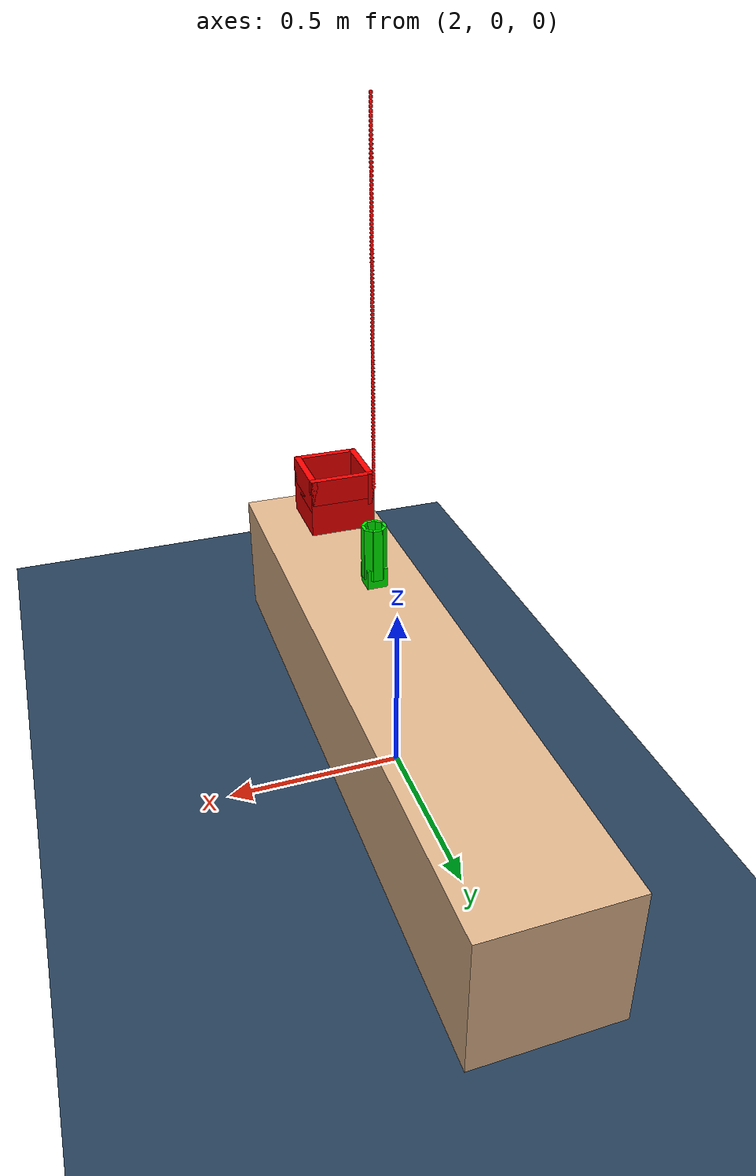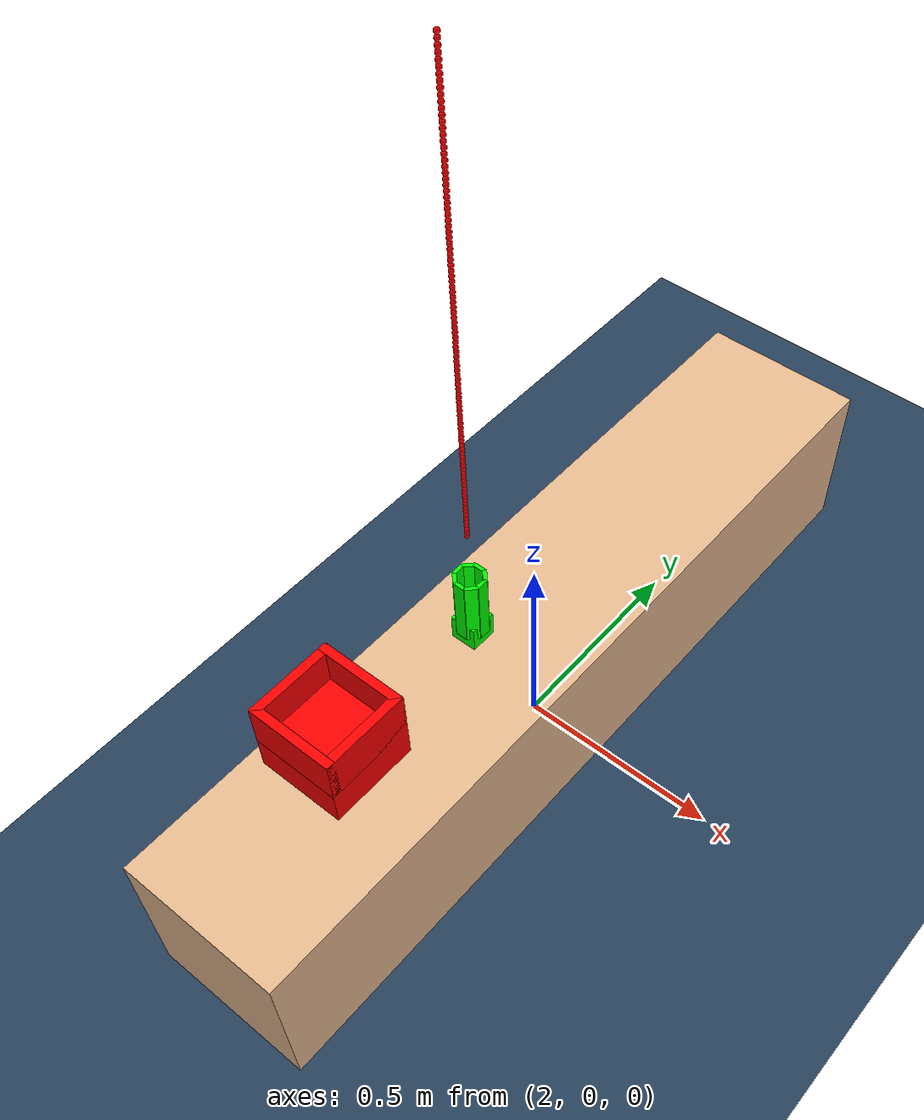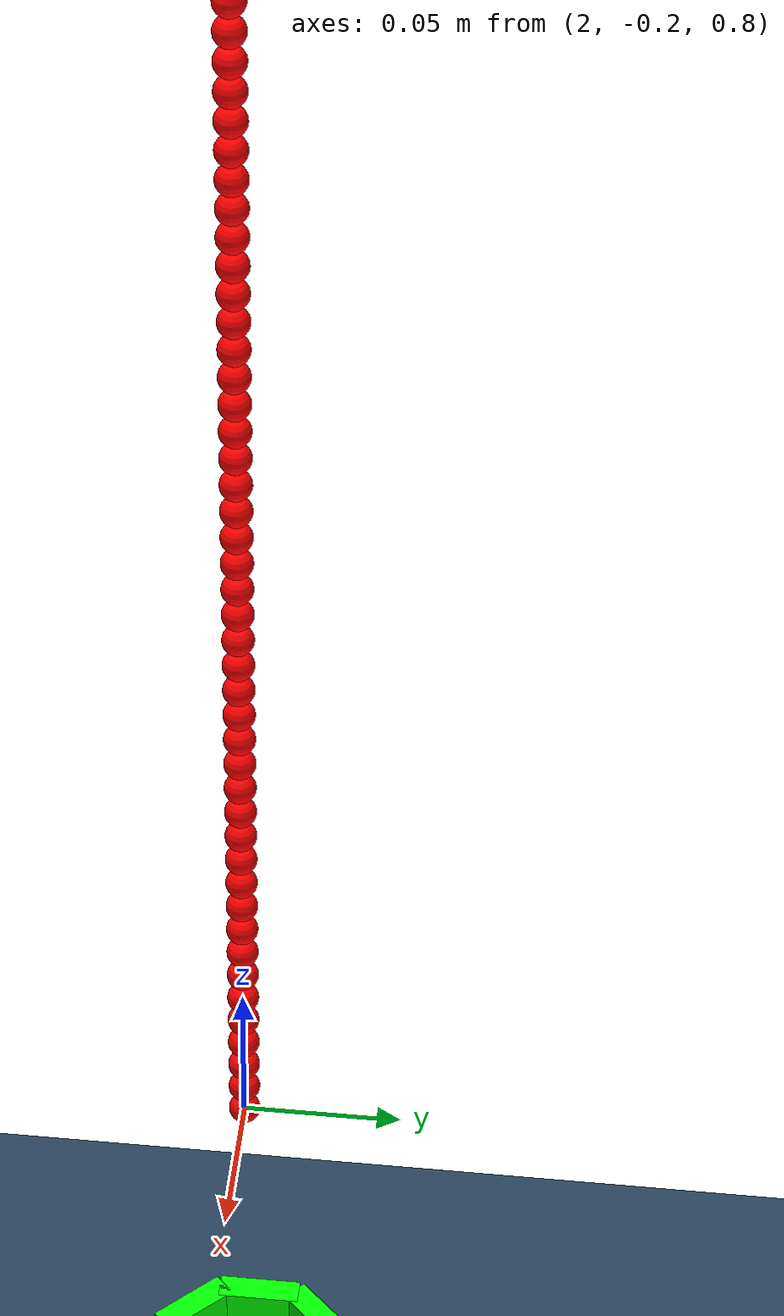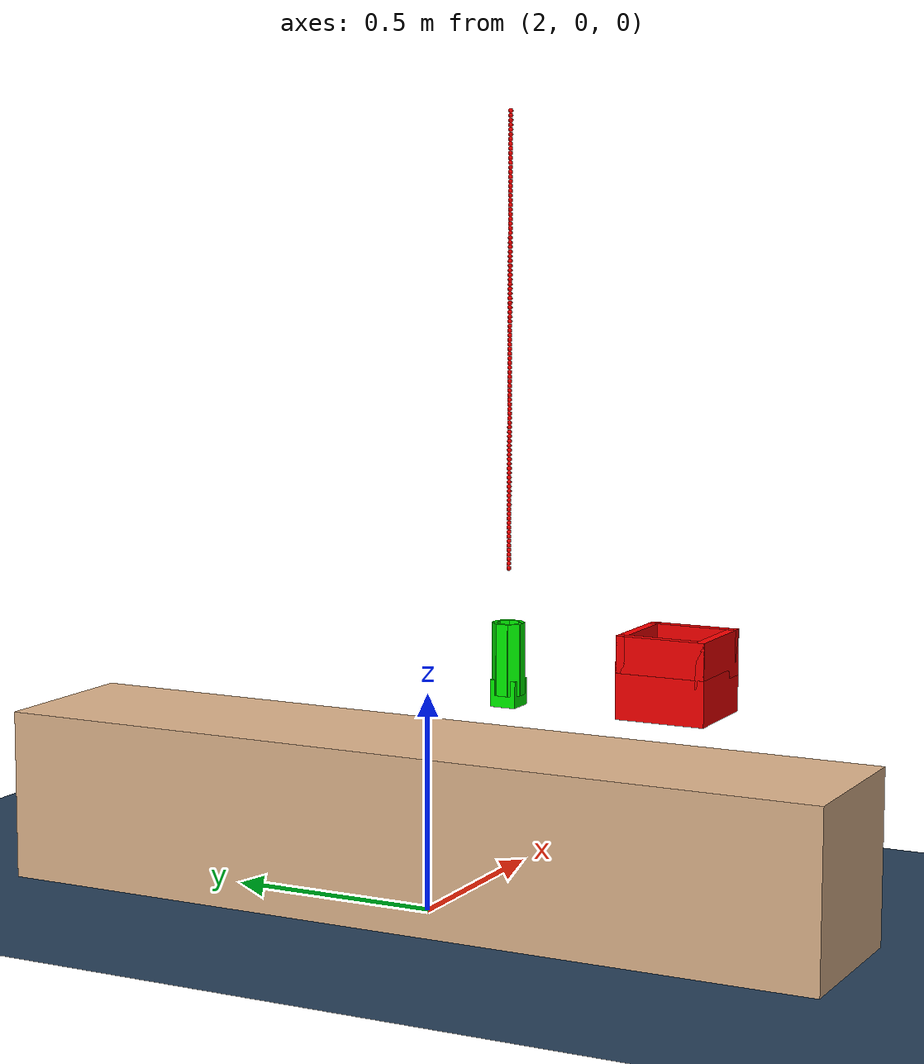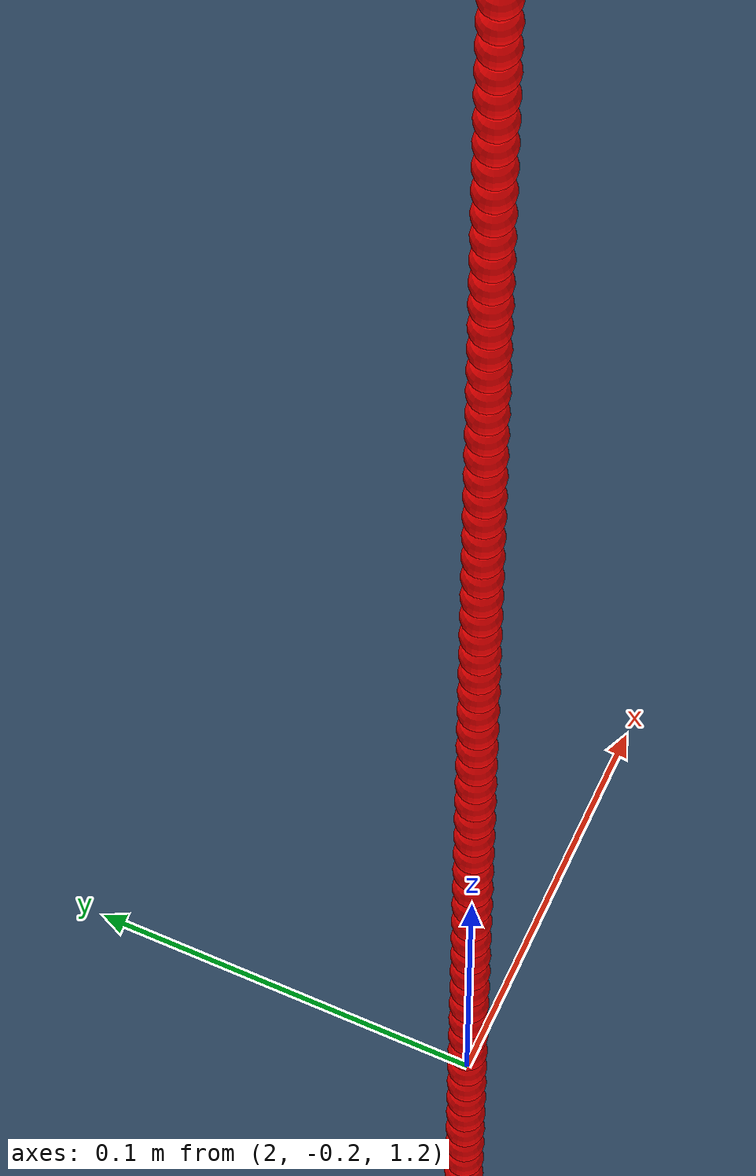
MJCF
<mujoco>
	<compiler angle="radian"/>
	<option timestep="0.001" integrator="RK4" solver="CG" gravity="0 0 -9.81">
    <flag sensornoise="disable" contact="enable"/>
  	</option>

	<asset>
		<texture name="grid" type="2d" builtin="checker" width="512" height="512" rgb1=".1 .2 .3" rgb2=".2 .3 .4" />
		<material name="grid" texture="grid" texrepeat="1 1" texuniform="true" reflectance=".2" />
	</asset>

	<worldbody>
		<geom name="floor" size="0 0 .05" type="plane" material="grid" condim="3" />
		<light diffuse="1 1 1" pos="0 0 4" dir="0 0 -1" />
		<light diffuse="1 1 1" pos="2 0 4" dir="0 0 -1" />
		<light diffuse="1 1 1" pos="1 0 4" dir="0 0 -1" />
	</worldbody>

	<worldbody>
		<body name="table" pos="2 0 0.2">
			<geom name="table_geom" type="box" size="0.2 1 0.2" rgba=".89 0.72 .56 1"/>
		</body>

		<body name="bowl" pos="2 -0.6 0.6">
			<freejoint/>
			<geom name="bottom" type="box" size="0.1 0.1 0.05" pos="0 0 -0.04" rgba="1 0 0 1"/>

			<geom name="side1" type="box" size="0.01 0.1 0.05" pos="0.09 0 0.04" rgba="1 0 0 1"/>
			<geom name="side2" type="box" size="0.01 0.1 0.05" pos="-0.09 0 0.04" rgba="1 0 0 1"/>
			<geom name="side3" type="box" size="0.1 0.01 0.05" pos="0 0.09 0.04" rgba="1 0 0 1"/>
			<geom name="side4" type="box" size="0.1 0.01 0.05" pos="0 -0.09 0.04" rgba="1 0 0 1"/>
		</body>

		<body name="free_cup" pos="2 -0.2 0.6">
		<freejoint/>
     <inertial pos="0.0 0.0 0.0" mass="0.01" diaginertia="0.0008 0.0008 0.00015" />
			<geom type="box" pos="0 0 -0.076" size="0.03 0.03 0.03" rgba="0 1 0 1"/>
			<geom type="box" pos="0.03 0 0" euler="0 0 0" size="0.0044 0.013420519420888278 0.08" rgba="0 1 0 1" />
			<geom type="box" pos="0.021213 0.021213 0" euler="0 0 0.7853981633974483" size="0.0044 0.013420519420888278 0.08" rgba="0 1 0 1" />
			<geom type="box" pos="0 0.03 0" euler="0 0 1.5707963267948966" size="0.0044 0.013420519420888278 0.08" rgba="0 1 0 1" />
			<geom type="box" pos="-0.021213 0.021213 0" euler="0 0 2.356194490192345" size="0.0044 0.013420519420888278 0.08" rgba="0 1 0 1" />
			<geom type="box" pos="-0.03 0 0" euler="0 0 3.141592653589793" size="0.0044 0.013420519420888278 0.08" rgba="0 1 0 1" />
			<geom type="box" pos="-0.021213 -0.021213 0" euler="0 0 -2.356194490192345" size="0.0044 0.013420519420888278 0.08" rgba="0 1 0 1" />
			<geom type="box" pos="0 -0.03 0" euler="0 0 -1.5707963267948966" size="0.0044 0.013420519420888278 0.08" rgba="0 1 0 1" />
			<geom type="box" pos="0.021213 -0.021213 0" euler="0 0 -0.7853981633974483" size="0.0044 0.013420519420888278 0.08" rgba="0 1 0 1" />
		</body>
	</worldbody>

	<worldbody>
		<body name="sync_ball0" pos="2 -0.2 0.8">
			<freejoint/><inertial pos="0.0 0.0 0.0" mass="0.0001" diaginertia="0.000000001 0.000000001 0.000000001" />
			<geom type="sphere" size="0.005" rgba="1 0 0 1"/>
		</body>
		<body name="sync_ball1" pos="2 -0.2 0.81">
			<freejoint/> <inertial pos="0.0 0.0 0.0" mass="0.0001" diaginertia="0.000000001 0.000000001 0.000000001" />
			<geom type="sphere" size="0.005" rgba="1 0 0 1"/>
		</body>
		<body name="sync_ball2" pos="2 -0.2 0.8200000000000001">
			<freejoint/> <inertial pos="0.0 0.0 0.0" mass="0.0001" diaginertia="0.000000001 0.000000001 0.000000001" />
			<geom type="sphere" size="0.005" rgba="1 0 0 1"/>
		</body>
		<body name="sync_ball3" pos="2 -0.2 0.8300000000000001">
			<freejoint/> <inertial pos="0.0 0.0 0.0" mass="0.0001" diaginertia="0.000000001 0.000000001 0.000000001" />
			<geom type="sphere" size="0.005" rgba="1 0 0 1"/>
		</body>
		<body name="sync_ball4" pos="2 -0.2 0.8400000000000001">
			<freejoint/> <inertial pos="0.0 0.0 0.0" mass="0.0001" diaginertia="0.000000001 0.000000001 0.000000001" />
			<geom type="sphere" size="0.005" rgba="1 0 0 1"/>
		</body>
		<body name="sync_ball5" pos="2 -0.2 0.8500000000000001">
			<freejoint/> <inertial pos="0.0 0.0 0.0" mass="0.0001" diaginertia="0.000000001 0.000000001 0.000000001" />
			<geom type="sphere" size="0.005" rgba="1 0 0 1"/>
		</body>
		<body name="sync_ball6" pos="2 -0.2 0.8600000000000001">
			<freejoint/> <inertial pos="0.0 0.0 0.0" mass="0.0001" diaginertia="0.000000001 0.000000001 0.000000001" />
			<geom type="sphere" size="0.005" rgba="1 0 0 1"/>
		</body>
		<body name="sync_ball7" pos="2 -0.2 0.8700000000000001">
			<freejoint/> <inertial pos="0.0 0.0 0.0" mass="0.0001" diaginertia="0.000000001 0.000000001 0.000000001" />
			<geom type="sphere" size="0.005" rgba="1 0 0 1"/>
		</body>
		<body name="sync_ball8" pos="2 -0.2 0.88">
			<freejoint/> <inertial pos="0.0 0.0 0.0" mass="0.0001" diaginertia="0.000000001 0.000000001 0.000000001" />
			<geom type="sphere" size="0.005" rgba="1 0 0 1"/>
		</body>
		<body name="sync_ball9" pos="2 -0.2 0.89">
			<freejoint/> <inertial pos="0.0 0.0 0.0" mass="0.0001" diaginertia="0.000000001 0.000000001 0.000000001" />
			<geom type="sphere" size="0.005" rgba="1 0 0 1"/>
		</body>
		<body name="sync_ball10" pos="2 -0.2 0.9">
			<freejoint/> <inertial pos="0.0 0.0 0.0" mass="0.0001" diaginertia="0.000000001 0.000000001 0.000000001" />
			<geom type="sphere" size="0.005" rgba="1 0 0 1"/>
		</body>
		<body name="sync_ball11" pos="2 -0.2 0.91">
			<freejoint/> <inertial pos="0.0 0.0 0.0" mass="0.0001" diaginertia="0.000000001 0.000000001 0.000000001" />
			<geom type="sphere" size="0.005" rgba="1 0 0 1"/>
		</body>
		<body name="sync_ball12" pos="2 -0.2 0.92">
			<freejoint/> <inertial pos="0.0 0.0 0.0" mass="0.0001" diaginertia="0.000000001 0.000000001 0.000000001" />
			<geom type="sphere" size="0.005" rgba="1 0 0 1"/>
		</body>
		<body name="sync_ball13" pos="2 -0.2 0.93">
			<freejoint/> <inertial pos="0.0 0.0 0.0" mass="0.0001" diaginertia="0.000000001 0.000000001 0.000000001" />
			<geom type="sphere" size="0.005" rgba="1 0 0 1"/>
		</body>
		<body name="sync_ball14" pos="2 -0.2 0.9400000000000001">
			<freejoint/> <inertial pos="0.0 0.0 0.0" mass="0.0001" diaginertia="0.000000001 0.000000001 0.000000001" />
			<geom type="sphere" size="0.005" rgba="1 0 0 1"/>
		</body>
		<body name="sync_ball15" pos="2 -0.2 0.9500000000000001">
			<freejoint/> <inertial pos="0.0 0.0 0.0" mass="0.0001" diaginertia="0.000000001 0.000000001 0.000000001" />
			<geom type="sphere" size="0.005" rgba="1 0 0 1"/>
		</body>
		<body name="sync_ball16" pos="2 -0.2 0.9600000000000001">
			<freejoint/> <inertial pos="0.0 0.0 0.0" mass="0.0001" diaginertia="0.000000001 0.000000001 0.000000001" />
			<geom type="sphere" size="0.005" rgba="1 0 0 1"/>
		</body>
		<body name="sync_ball17" pos="2 -0.2 0.9700000000000001">
			<freejoint/> <inertial pos="0.0 0.0 0.0" mass="0.0001" diaginertia="0.000000001 0.000000001 0.000000001" />
			<geom type="sphere" size="0.005" rgba="1 0 0 1"/>
		</body>
		<body name="sync_ball18" pos="2 -0.2 0.98">
			<freejoint/> <inertial pos="0.0 0.0 0.0" mass="0.0001" diaginertia="0.000000001 0.000000001 0.000000001" />
			<geom type="sphere" size="0.005" rgba="1 0 0 1"/>
		</body>
		<body name="sync_ball19" pos="2 -0.2 0.99">
			<freejoint/> <inertial pos="0.0 0.0 0.0" mass="0.0001" diaginertia="0.000000001 0.000000001 0.000000001" />
			<geom type="sphere" size="0.005" rgba="1 0 0 1"/>
		</body>
		<body name="sync_ball20" pos="2 -0.2 1.0">
			<freejoint/> <inertial pos="0.0 0.0 0.0" mass="0.0001" diaginertia="0.000000001 0.000000001 0.000000001" />
			<geom type="sphere" size="0.005" rgba="1 0 0 1"/>
		</body>
		<body name="sync_ball21" pos="2 -0.2 1.01">
			<freejoint/> <inertial pos="0.0 0.0 0.0" mass="0.0001" diaginertia="0.000000001 0.000000001 0.000000001" />
			<geom type="sphere" size="0.005" rgba="1 0 0 1"/>
		</body>
		<body name="sync_ball22" pos="2 -0.2 1.02">
			<freejoint/> <inertial pos="0.0 0.0 0.0" mass="0.0001" diaginertia="0.000000001 0.000000001 0.000000001" />
			<geom type="sphere" size="0.005" rgba="1 0 0 1"/>
		</body>
		<body name="sync_ball23" pos="2 -0.2 1.03">
			<freejoint/> <inertial pos="0.0 0.0 0.0" mass="0.0001" diaginertia="0.000000001 0.000000001 0.000000001" />
			<geom type="sphere" size="0.005" rgba="1 0 0 1"/>
		</body>
		<body name="sync_ball24" pos="2 -0.2 1.04">
			<freejoint/> <inertial pos="0.0 0.0 0.0" mass="0.0001" diaginertia="0.000000001 0.000000001 0.000000001" />
			<geom type="sphere" size="0.005" rgba="1 0 0 1"/>
		</body>
		<body name="sync_ball25" pos="2 -0.2 1.05">
			<freejoint/> <inertial pos="0.0 0.0 0.0" mass="0.0001" diaginertia="0.000000001 0.000000001 0.000000001" />
			<geom type="sphere" size="0.005" rgba="1 0 0 1"/>
		</body>
		<body name="sync_ball26" pos="2 -0.2 1.06">
			<freejoint/> <inertial pos="0.0 0.0 0.0" mass="0.0001" diaginertia="0.000000001 0.000000001 0.000000001" />
			<geom type="sphere" size="0.005" rgba="1 0 0 1"/>
		</body>
		<body name="sync_ball27" pos="2 -0.2 1.07">
			<freejoint/> <inertial pos="0.0 0.0 0.0" mass="0.0001" diaginertia="0.000000001 0.000000001 0.000000001" />
			<geom type="sphere" size="0.005" rgba="1 0 0 1"/>
		</body>
		<body name="sync_ball28" pos="2 -0.2 1.08">
			<freejoint/> <inertial pos="0.0 0.0 0.0" mass="0.0001" diaginertia="0.000000001 0.000000001 0.000000001" />
			<geom type="sphere" size="0.005" rgba="1 0 0 1"/>
		</body>
		<body name="sync_ball29" pos="2 -0.2 1.09">
			<freejoint/> <inertial pos="0.0 0.0 0.0" mass="0.0001" diaginertia="0.000000001 0.000000001 0.000000001" />
			<geom type="sphere" size="0.005" rgba="1 0 0 1"/>
		</body>
		<body name="sync_ball30" pos="2 -0.2 1.1">
			<freejoint/> <inertial pos="0.0 0.0 0.0" mass="0.0001" diaginertia="0.000000001 0.000000001 0.000000001" />
			<geom type="sphere" size="0.005" rgba="1 0 0 1"/>
		</body>
		<body name="sync_ball31" pos="2 -0.2 1.11">
			<freejoint/> <inertial pos="0.0 0.0 0.0" mass="0.0001" diaginertia="0.000000001 0.000000001 0.000000001" />
			<geom type="sphere" size="0.005" rgba="1 0 0 1"/>
		</body>
		<body name="sync_ball32" pos="2 -0.2 1.12">
			<freejoint/> <inertial pos="0.0 0.0 0.0" mass="0.0001" diaginertia="0.000000001 0.000000001 0.000000001" />
			<geom type="sphere" size="0.005" rgba="1 0 0 1"/>
		</body>
		<body name="sync_ball33" pos="2 -0.2 1.1300000000000001">
			<freejoint/> <inertial pos="0.0 0.0 0.0" mass="0.0001" diaginertia="0.000000001 0.000000001 0.000000001" />
			<geom type="sphere" size="0.005" rgba="1 0 0 1"/>
		</body>
		<body name="sync_ball34" pos="2 -0.2 1.1400000000000001">
			<freejoint/> <inertial pos="0.0 0.0 0.0" mass="0.0001" diaginertia="0.000000001 0.000000001 0.000000001" />
			<geom type="sphere" size="0.005" rgba="1 0 0 1"/>
		</body>
		<body name="sync_ball35" pos="2 -0.2 1.1500000000000001">
			<freejoint/> <inertial pos="0.0 0.0 0.0" mass="0.0001" diaginertia="0.000000001 0.000000001 0.000000001" />
			<geom type="sphere" size="0.005" rgba="1 0 0 1"/>
		</body>
		<body name="sync_ball36" pos="2 -0.2 1.1600000000000001">
			<freejoint/> <inertial pos="0.0 0.0 0.0" mass="0.0001" diaginertia="0.000000001 0.000000001 0.000000001" />
			<geom type="sphere" size="0.005" rgba="1 0 0 1"/>
		</body>
		<body name="sync_ball37" pos="2 -0.2 1.17">
			<freejoint/> <inertial pos="0.0 0.0 0.0" mass="0.0001" diaginertia="0.000000001 0.000000001 0.000000001" />
			<geom type="sphere" size="0.005" rgba="1 0 0 1"/>
		</body>
		<body name="sync_ball38" pos="2 -0.2 1.1800000000000002">
			<freejoint/> <inertial pos="0.0 0.0 0.0" mass="0.0001" diaginertia="0.000000001 0.000000001 0.000000001" />
			<geom type="sphere" size="0.005" rgba="1 0 0 1"/>
		</body>
		<body name="sync_ball39" pos="2 -0.2 1.19">
			<freejoint/> <inertial pos="0.0 0.0 0.0" mass="0.0001" diaginertia="0.000000001 0.000000001 0.000000001" />
			<geom type="sphere" size="0.005" rgba="1 0 0 1"/>
		</body>
		<body name="sync_ball40" pos="2 -0.2 1.2000000000000002">
			<freejoint/> <inertial pos="0.0 0.0 0.0" mass="0.0001" diaginertia="0.000000001 0.000000001 0.000000001" />
			<geom type="sphere" size="0.005" rgba="1 0 0 1"/>
		</body>
		<body name="sync_ball41" pos="2 -0.2 1.21">
			<freejoint/> <inertial pos="0.0 0.0 0.0" mass="0.0001" diaginertia="0.000000001 0.000000001 0.000000001" />
			<geom type="sphere" size="0.005" rgba="1 0 0 1"/>
		</body>
		<body name="sync_ball42" pos="2 -0.2 1.22">
			<freejoint/> <inertial pos="0.0 0.0 0.0" mass="0.0001" diaginertia="0.000000001 0.000000001 0.000000001" />
			<geom type="sphere" size="0.005" rgba="1 0 0 1"/>
		</body>
		<body name="sync_ball43" pos="2 -0.2 1.23">
			<freejoint/> <inertial pos="0.0 0.0 0.0" mass="0.0001" diaginertia="0.000000001 0.000000001 0.000000001" />
			<geom type="sphere" size="0.005" rgba="1 0 0 1"/>
		</body>
		<body name="sync_ball44" pos="2 -0.2 1.24">
			<freejoint/> <inertial pos="0.0 0.0 0.0" mass="0.0001" diaginertia="0.000000001 0.000000001 0.000000001" />
			<geom type="sphere" size="0.005" rgba="1 0 0 1"/>
		</body>
		<body name="sync_ball45" pos="2 -0.2 1.25">
			<freejoint/> <inertial pos="0.0 0.0 0.0" mass="0.0001" diaginertia="0.000000001 0.000000001 0.000000001" />
			<geom type="sphere" size="0.005" rgba="1 0 0 1"/>
		</body>
		<body name="sync_ball46" pos="2 -0.2 1.26">
			<freejoint/> <inertial pos="0.0 0.0 0.0" mass="0.0001" diaginertia="0.000000001 0.000000001 0.000000001" />
			<geom type="sphere" size="0.005" rgba="1 0 0 1"/>
		</body>
		<body name="sync_ball47" pos="2 -0.2 1.27">
			<freejoint/> <inertial pos="0.0 0.0 0.0" mass="0.0001" diaginertia="0.000000001 0.000000001 0.000000001" />
			<geom type="sphere" size="0.005" rgba="1 0 0 1"/>
		</body>
		<body name="sync_ball48" pos="2 -0.2 1.28">
			<freejoint/> <inertial pos="0.0 0.0 0.0" mass="0.0001" diaginertia="0.000000001 0.000000001 0.000000001" />
			<geom type="sphere" size="0.005" rgba="1 0 0 1"/>
		</body>
		<body name="sync_ball49" pos="2 -0.2 1.29">
			<freejoint/> <inertial pos="0.0 0.0 0.0" mass="0.0001" diaginertia="0.000000001 0.000000001 0.000000001" />
			<geom type="sphere" size="0.005" rgba="1 0 0 1"/>
		</body>
		<body name="sync_ball50" pos="2 -0.2 1.3">
			<freejoint/> <inertial pos="0.0 0.0 0.0" mass="0.0001" diaginertia="0.000000001 0.000000001 0.000000001" />
			<geom type="sphere" size="0.005" rgba="1 0 0 1"/>
		</body>
		<body name="sync_ball51" pos="2 -0.2 1.31">
			<freejoint/> <inertial pos="0.0 0.0 0.0" mass="0.0001" diaginertia="0.000000001 0.000000001 0.000000001" />
			<geom type="sphere" size="0.005" rgba="1 0 0 1"/>
		</body>
		<body name="sync_ball52" pos="2 -0.2 1.32">
			<freejoint/> <inertial pos="0.0 0.0 0.0" mass="0.0001" diaginertia="0.000000001 0.000000001 0.000000001" />
			<geom type="sphere" size="0.005" rgba="1 0 0 1"/>
		</body>
		<body name="sync_ball53" pos="2 -0.2 1.33">
			<freejoint/> <inertial pos="0.0 0.0 0.0" mass="0.0001" diaginertia="0.000000001 0.000000001 0.000000001" />
			<geom type="sphere" size="0.005" rgba="1 0 0 1"/>
		</body>
		<body name="sync_ball54" pos="2 -0.2 1.34">
			<freejoint/> <inertial pos="0.0 0.0 0.0" mass="0.0001" diaginertia="0.000000001 0.000000001 0.000000001" />
			<geom type="sphere" size="0.005" rgba="1 0 0 1"/>
		</body>
		<body name="sync_ball55" pos="2 -0.2 1.35">
			<freejoint/> <inertial pos="0.0 0.0 0.0" mass="0.0001" diaginertia="0.000000001 0.000000001 0.000000001" />
			<geom type="sphere" size="0.005" rgba="1 0 0 1"/>
		</body>
		<body name="sync_ball56" pos="2 -0.2 1.36">
			<freejoint/> <inertial pos="0.0 0.0 0.0" mass="0.0001" diaginertia="0.000000001 0.000000001 0.000000001" />
			<geom type="sphere" size="0.005" rgba="1 0 0 1"/>
		</body>
		<body name="sync_ball57" pos="2 -0.2 1.37">
			<freejoint/> <inertial pos="0.0 0.0 0.0" mass="0.0001" diaginertia="0.000000001 0.000000001 0.000000001" />
			<geom type="sphere" size="0.005" rgba="1 0 0 1"/>
		</body>
		<body name="sync_ball58" pos="2 -0.2 1.38">
			<freejoint/> <inertial pos="0.0 0.0 0.0" mass="0.0001" diaginertia="0.000000001 0.000000001 0.000000001" />
			<geom type="sphere" size="0.005" rgba="1 0 0 1"/>
		</body>
		<body name="sync_ball59" pos="2 -0.2 1.3900000000000001">
			<freejoint/> <inertial pos="0.0 0.0 0.0" mass="0.0001" diaginertia="0.000000001 0.000000001 0.000000001" />
			<geom type="sphere" size="0.005" rgba="1 0 0 1"/>
		</body>
		<body name="sync_ball60" pos="2 -0.2 1.4">
			<freejoint/> <inertial pos="0.0 0.0 0.0" mass="0.0001" diaginertia="0.000000001 0.000000001 0.000000001" />
			<geom type="sphere" size="0.005" rgba="1 0 0 1"/>
		</body>
		<body name="sync_ball61" pos="2 -0.2 1.4100000000000001">
			<freejoint/> <inertial pos="0.0 0.0 0.0" mass="0.0001" diaginertia="0.000000001 0.000000001 0.000000001" />
			<geom type="sphere" size="0.005" rgba="1 0 0 1"/>
		</body>
		<body name="sync_ball62" pos="2 -0.2 1.42">
			<freejoint/> <inertial pos="0.0 0.0 0.0" mass="0.0001" diaginertia="0.000000001 0.000000001 0.000000001" />
			<geom type="sphere" size="0.005" rgba="1 0 0 1"/>
		</body>
		<body name="sync_ball63" pos="2 -0.2 1.4300000000000002">
			<freejoint/> <inertial pos="0.0 0.0 0.0" mass="0.0001" diaginertia="0.000000001 0.000000001 0.000000001" />
			<geom type="sphere" size="0.005" rgba="1 0 0 1"/>
		</body>
		<body name="sync_ball64" pos="2 -0.2 1.44">
			<freejoint/> <inertial pos="0.0 0.0 0.0" mass="0.0001" diaginertia="0.000000001 0.000000001 0.000000001" />
			<geom type="sphere" size="0.005" rgba="1 0 0 1"/>
		</body>
		<body name="sync_ball65" pos="2 -0.2 1.4500000000000002">
			<freejoint/> <inertial pos="0.0 0.0 0.0" mass="0.0001" diaginertia="0.000000001 0.000000001 0.000000001" />
			<geom type="sphere" size="0.005" rgba="1 0 0 1"/>
		</body>
		<body name="sync_ball66" pos="2 -0.2 1.46">
			<freejoint/> <inertial pos="0.0 0.0 0.0" mass="0.0001" diaginertia="0.000000001 0.000000001 0.000000001" />
			<geom type="sphere" size="0.005" rgba="1 0 0 1"/>
		</body>
		<body name="sync_ball67" pos="2 -0.2 1.4700000000000002">
			<freejoint/> <inertial pos="0.0 0.0 0.0" mass="0.0001" diaginertia="0.000000001 0.000000001 0.000000001" />
			<geom type="sphere" size="0.005" rgba="1 0 0 1"/>
		</body>
		<body name="sync_ball68" pos="2 -0.2 1.48">
			<freejoint/> <inertial pos="0.0 0.0 0.0" mass="0.0001" diaginertia="0.000000001 0.000000001 0.000000001" />
			<geom type="sphere" size="0.005" rgba="1 0 0 1"/>
		</body>
		<body name="sync_ball69" pos="2 -0.2 1.4900000000000002">
			<freejoint/> <inertial pos="0.0 0.0 0.0" mass="0.0001" diaginertia="0.000000001 0.000000001 0.000000001" />
			<geom type="sphere" size="0.005" rgba="1 0 0 1"/>
		</body>
		<body name="sync_ball70" pos="2 -0.2 1.5">
			<freejoint/> <inertial pos="0.0 0.0 0.0" mass="0.0001" diaginertia="0.000000001 0.000000001 0.000000001" />
			<geom type="sphere" size="0.005" rgba="1 0 0 1"/>
		</body>
		<body name="sync_ball71" pos="2 -0.2 1.51">
			<freejoint/> <inertial pos="0.0 0.0 0.0" mass="0.0001" diaginertia="0.000000001 0.000000001 0.000000001" />
			<geom type="sphere" size="0.005" rgba="1 0 0 1"/>
		</body>
		<body name="sync_ball72" pos="2 -0.2 1.52">
			<freejoint/> <inertial pos="0.0 0.0 0.0" mass="0.0001" diaginertia="0.000000001 0.000000001 0.000000001" />
			<geom type="sphere" size="0.005" rgba="1 0 0 1"/>
		</body>
		<body name="sync_ball73" pos="2 -0.2 1.53">
			<freejoint/> <inertial pos="0.0 0.0 0.0" mass="0.0001" diaginertia="0.000000001 0.000000001 0.000000001" />
			<geom type="sphere" size="0.005" rgba="1 0 0 1"/>
		</body>
		<body name="sync_ball74" pos="2 -0.2 1.54">
			<freejoint/> <inertial pos="0.0 0.0 0.0" mass="0.0001" diaginertia="0.000000001 0.000000001 0.000000001" />
			<geom type="sphere" size="0.005" rgba="1 0 0 1"/>
		</body>
		<body name="sync_ball75" pos="2 -0.2 1.55">
			<freejoint/> <inertial pos="0.0 0.0 0.0" mass="0.0001" diaginertia="0.000000001 0.000000001 0.000000001" />
			<geom type="sphere" size="0.005" rgba="1 0 0 1"/>
		</body>
		<body name="sync_ball76" pos="2 -0.2 1.56">
			<freejoint/> <inertial pos="0.0 0.0 0.0" mass="0.0001" diaginertia="0.000000001 0.000000001 0.000000001" />
			<geom type="sphere" size="0.005" rgba="1 0 0 1"/>
		</body>
		<body name="sync_ball77" pos="2 -0.2 1.57">
			<freejoint/> <inertial pos="0.0 0.0 0.0" mass="0.0001" diaginertia="0.000000001 0.000000001 0.000000001" />
			<geom type="sphere" size="0.005" rgba="1 0 0 1"/>
		</body>
		<body name="sync_ball78" pos="2 -0.2 1.58">
			<freejoint/> <inertial pos="0.0 0.0 0.0" mass="0.0001" diaginertia="0.000000001 0.000000001 0.000000001" />
			<geom type="sphere" size="0.005" rgba="1 0 0 1"/>
		</body>
		<body name="sync_ball79" pos="2 -0.2 1.59">
			<freejoint/> <inertial pos="0.0 0.0 0.0" mass="0.0001" diaginertia="0.000000001 0.000000001 0.000000001" />
			<geom type="sphere" size="0.005" rgba="1 0 0 1"/>
		</body>
		<body name="sync_ball80" pos="2 -0.2 1.6">
			<freejoint/> <inertial pos="0.0 0.0 0.0" mass="0.0001" diaginertia="0.000000001 0.000000001 0.000000001" />
			<geom type="sphere" size="0.005" rgba="1 0 0 1"/>
		</body>
		<body name="sync_ball81" pos="2 -0.2 1.61">
			<freejoint/> <inertial pos="0.0 0.0 0.0" mass="0.0001" diaginertia="0.000000001 0.000000001 0.000000001" />
			<geom type="sphere" size="0.005" rgba="1 0 0 1"/>
		</body>
		<body name="sync_ball82" pos="2 -0.2 1.62">
			<freejoint/> <inertial pos="0.0 0.0 0.0" mass="0.0001" diaginertia="0.000000001 0.000000001 0.000000001" />
			<geom type="sphere" size="0.005" rgba="1 0 0 1"/>
		</body>
		<body name="sync_ball83" pos="2 -0.2 1.6300000000000001">
			<freejoint/> <inertial pos="0.0 0.0 0.0" mass="0.0001" diaginertia="0.000000001 0.000000001 0.000000001" />
			<geom type="sphere" size="0.005" rgba="1 0 0 1"/>
		</body>
		<body name="sync_ball84" pos="2 -0.2 1.6400000000000001">
			<freejoint/> <inertial pos="0.0 0.0 0.0" mass="0.0001" diaginertia="0.000000001 0.000000001 0.000000001" />
			<geom type="sphere" size="0.005" rgba="1 0 0 1"/>
		</body>
		<body name="sync_ball85" pos="2 -0.2 1.65">
			<freejoint/> <inertial pos="0.0 0.0 0.0" mass="0.0001" diaginertia="0.000000001 0.000000001 0.000000001" />
			<geom type="sphere" size="0.005" rgba="1 0 0 1"/>
		</body>
		<body name="sync_ball86" pos="2 -0.2 1.6600000000000001">
			<freejoint/> <inertial pos="0.0 0.0 0.0" mass="0.0001" diaginertia="0.000000001 0.000000001 0.000000001" />
			<geom type="sphere" size="0.005" rgba="1 0 0 1"/>
		</body>
		<body name="sync_ball87" pos="2 -0.2 1.67">
			<freejoint/> <inertial pos="0.0 0.0 0.0" mass="0.0001" diaginertia="0.000000001 0.000000001 0.000000001" />
			<geom type="sphere" size="0.005" rgba="1 0 0 1"/>
		</body>
		<body name="sync_ball88" pos="2 -0.2 1.6800000000000002">
			<freejoint/> <inertial pos="0.0 0.0 0.0" mass="0.0001" diaginertia="0.000000001 0.000000001 0.000000001" />
			<geom type="sphere" size="0.005" rgba="1 0 0 1"/>
		</body>
		<body name="sync_ball89" pos="2 -0.2 1.69">
			<freejoint/> <inertial pos="0.0 0.0 0.0" mass="0.0001" diaginertia="0.000000001 0.000000001 0.000000001" />
			<geom type="sphere" size="0.005" rgba="1 0 0 1"/>
		</body>
		<body name="sync_ball90" pos="2 -0.2 1.7000000000000002">
			<freejoint/> <inertial pos="0.0 0.0 0.0" mass="0.0001" diaginertia="0.000000001 0.000000001 0.000000001" />
			<geom type="sphere" size="0.005" rgba="1 0 0 1"/>
		</body>
		<body name="sync_ball91" pos="2 -0.2 1.71">
			<freejoint/> <inertial pos="0.0 0.0 0.0" mass="0.0001" diaginertia="0.000000001 0.000000001 0.000000001" />
			<geom type="sphere" size="0.005" rgba="1 0 0 1"/>
		</body>
		<body name="sync_ball92" pos="2 -0.2 1.7200000000000002">
			<freejoint/> <inertial pos="0.0 0.0 0.0" mass="0.0001" diaginertia="0.000000001 0.000000001 0.000000001" />
			<geom type="sphere" size="0.005" rgba="1 0 0 1"/>
		</body>
		<body name="sync_ball93" pos="2 -0.2 1.73">
			<freejoint/> <inertial pos="0.0 0.0 0.0" mass="0.0001" diaginertia="0.000000001 0.000000001 0.000000001" />
			<geom type="sphere" size="0.005" rgba="1 0 0 1"/>
		</body>
		<body name="sync_ball94" pos="2 -0.2 1.7400000000000002">
			<freejoint/> <inertial pos="0.0 0.0 0.0" mass="0.0001" diaginertia="0.000000001 0.000000001 0.000000001" />
			<geom type="sphere" size="0.005" rgba="1 0 0 1"/>
		</body>
		<body name="sync_ball95" pos="2 -0.2 1.75">
			<freejoint/> <inertial pos="0.0 0.0 0.0" mass="0.0001" diaginertia="0.000000001 0.000000001 0.000000001" />
			<geom type="sphere" size="0.005" rgba="1 0 0 1"/>
		</body>
		<body name="sync_ball96" pos="2 -0.2 1.76">
			<freejoint/> <inertial pos="0.0 0.0 0.0" mass="0.0001" diaginertia="0.000000001 0.000000001 0.000000001" />
			<geom type="sphere" size="0.005" rgba="1 0 0 1"/>
		</body>
		<body name="sync_ball97" pos="2 -0.2 1.77">
			<freejoint/> <inertial pos="0.0 0.0 0.0" mass="0.0001" diaginertia="0.000000001 0.000000001 0.000000001" />
			<geom type="sphere" size="0.005" rgba="1 0 0 1"/>
		</body>
		<body name="sync_ball98" pos="2 -0.2 1.78">
			<freejoint/> <inertial pos="0.0 0.0 0.0" mass="0.0001" diaginertia="0.000000001 0.000000001 0.000000001" />
			<geom type="sphere" size="0.005" rgba="1 0 0 1"/>
		</body>
		<body name="sync_ball99" pos="2 -0.2 1.79">
			<freejoint/> <inertial pos="0.0 0.0 0.0" mass="0.0001" diaginertia="0.000000001 0.000000001 0.000000001" />
			<geom type="sphere" size="0.005" rgba="1 0 0 1"/>
		</body>

	</worldbody>

</mujoco>
